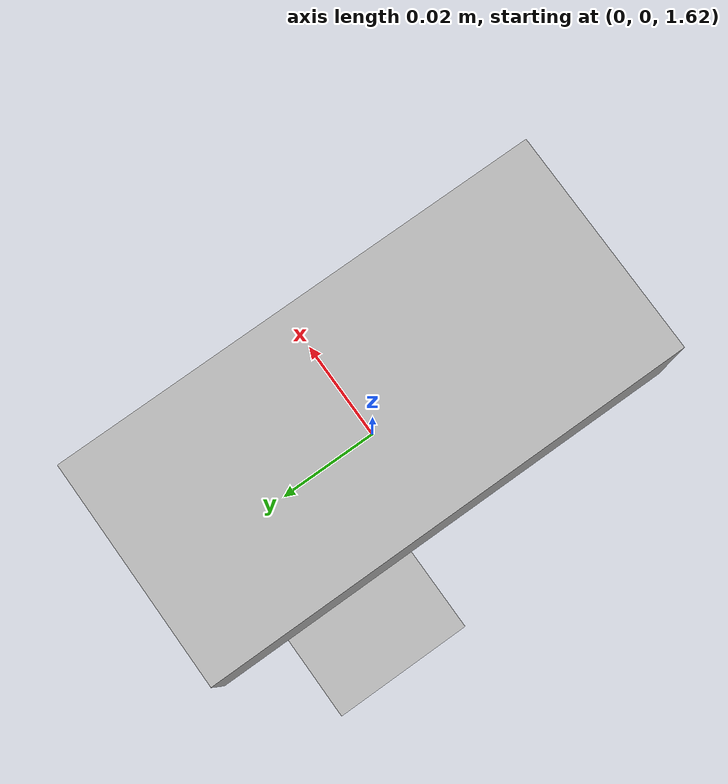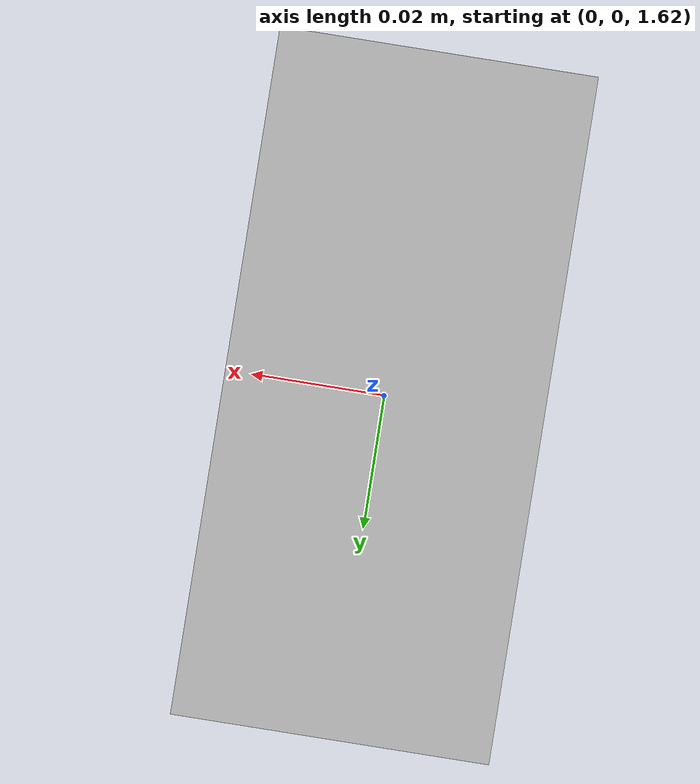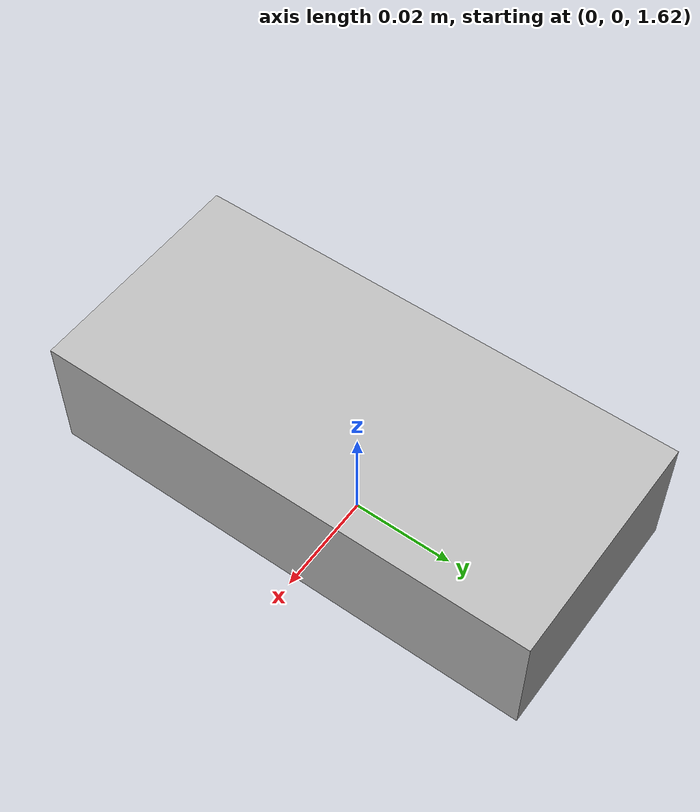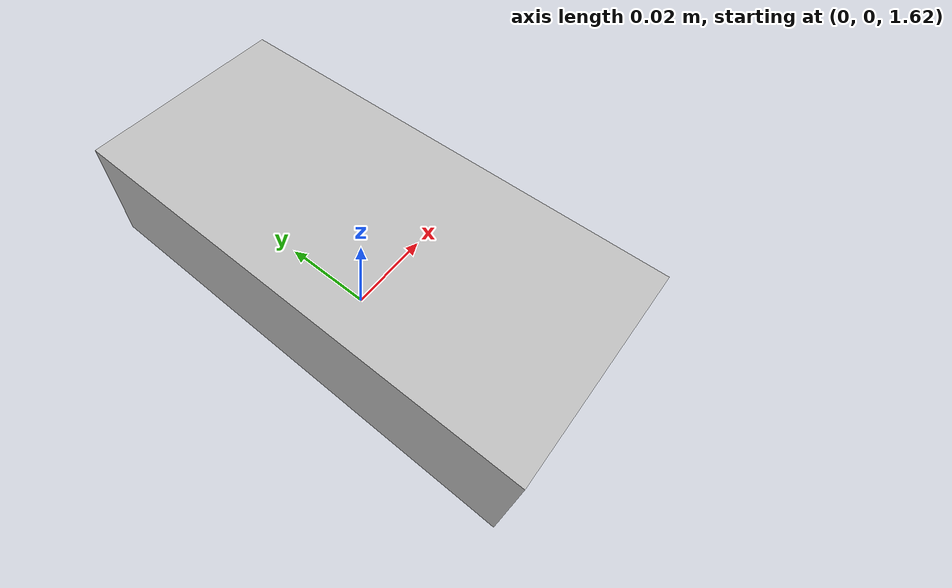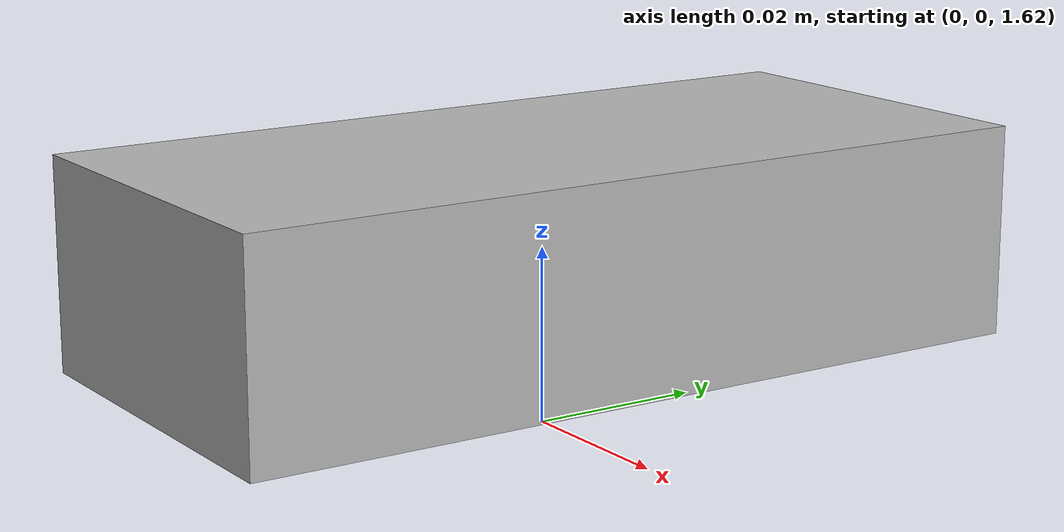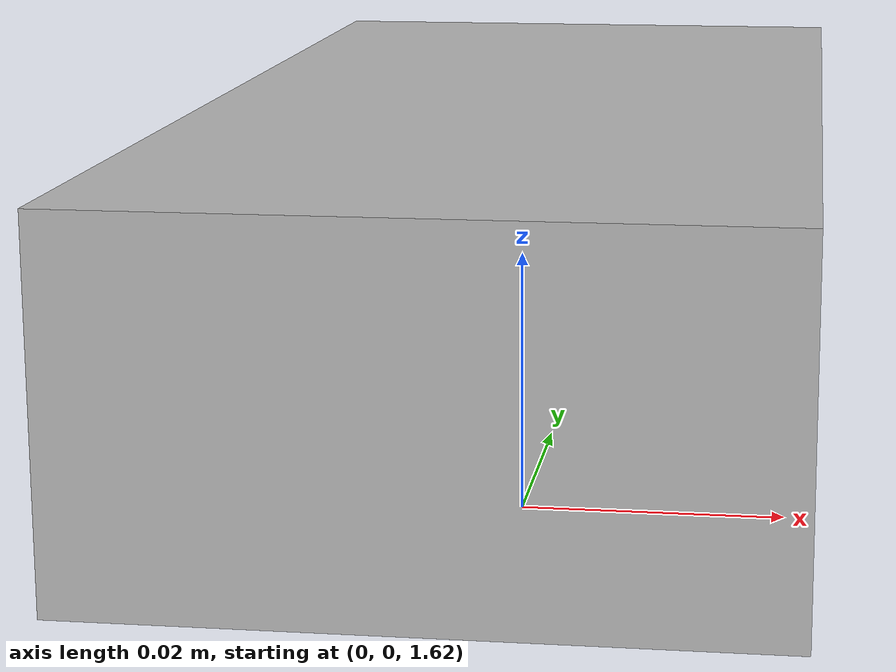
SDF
<sdf version="1.7">
 <world name="default">
  <include><uri>model://sun</uri></include>
  <include><uri>model://ground_plane</uri></include>
  <gravity>0 0 -9.8</gravity>
  <magnetic_field>6e-06 2.3e-05 -4.2e-05</magnetic_field>
  <atmosphere type="adiabatic"/>
  <physics type="ode">
   <max_step_size>0.001</max_step_size>
   <real_time_factor>1</real_time_factor>
   <real_time_update_rate>1000</real_time_update_rate>
  </physics>
  <scene><ambient>0.4 0.4 0.4 1</ambient><background>0.7 0.7 0.7 1</background><shadows>1</shadows></scene>
  <spherical_coordinates>
   <surface_model>EARTH_WGS84</surface_model>
   <latitude_deg>0</latitude_deg>
   <longitude_deg>0</longitude_deg>
   <elevation>0</elevation>
   <heading_deg>0</heading_deg>
  </spherical_coordinates>
  <model name="world">
   <joint name="base_track_joint" type="fixed">
    <pose relative_to="__model__">0 0 0 0 -0 0</pose>
    <parent>world</parent>
    <child>track</child>
   </joint>
   <link name="track">
    <pose relative_to="base_track_joint">0 0 0 0 -0 0</pose>
    <inertial>
     <pose>0 0 0.059901 0 -0 0</pose>
     <mass>50.5</mass>
     <inertia>
      <ixx>16.9386</ixx>
      <ixy>1.2e-07</ixy>
      <ixz>0</ixz>
      <iyy>16.9386</iyy>
      <iyz>0</iyz>
      <izz>4.96798</izz>
     </inertia>
    </inertial>
    <collision name="track_collision">
     <pose>0 0 0.045 0 -0 0</pose>
     <geometry><box><size>2 1.2 0.09</size></box></geometry>
    </collision>
    <collision name="track_fixed_joint_lump__camera_link_collision_1">
     <pose>0 0 1.55 0 -0 0</pose>
     <geometry><box><size>0.044 0.095 0.024</size></box></geometry>
    </collision>
    <visual name="track_visual">
     <pose>0 0 0.045 0 -0 0</pose>
     <geometry>
      <mesh>
       <scale>1 1 1</scale>
       <uri>/home/billy/fiverr/furqon_ws/src/trainer_robot_description/meshes/base_track.dae</uri>
      </mesh>
     </geometry>
    </visual>
    <visual name="track_fixed_joint_lump__camera_link_visual_1">
     <pose>0 0 1.55 0 -0 0</pose>
     <geometry><box><size>0.044 0.095 0.024</size></box></geometry>
    </visual>
   </link>
   <pose>0 0 0.09 0 -0 0</pose>
  </model>
 </world>
</sdf>
